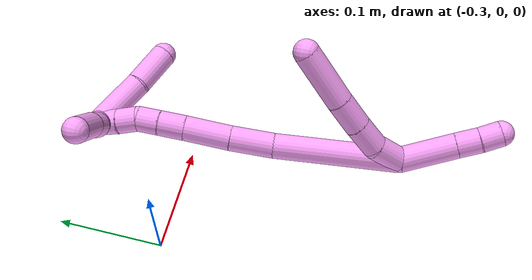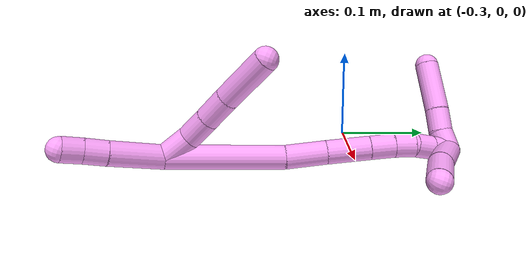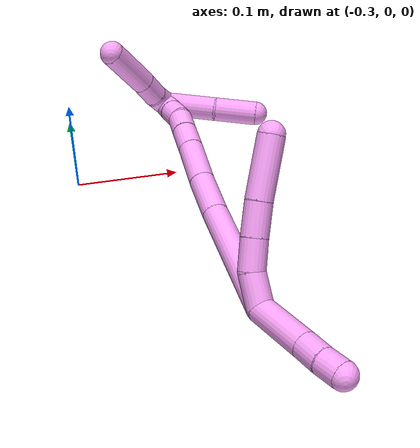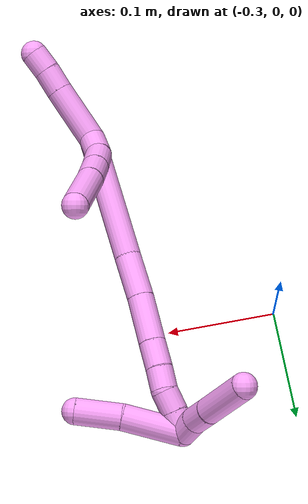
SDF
<sdf version="1.7">
 <world name="default">
  <model name="4">
   <static>0</static>
   <link name="4">
    <collision name="collision-cylinder-e_1_2_8">
     <pose>-0.013511 0.002218 -0.008337 -2.88152 -1.00252 2.67303</pose>
     <geometry><cylinder><radius>0.0125</radius><length>0.03206</length></cylinder></geometry>
     <surface>
      <friction><ode><mu>1.16</mu><mu2>1.16</mu2><slip1>0</slip1><slip2>0</slip2></ode></friction>
      <contact><ode><kp>1e+06</kp><kd>1</kd><max_vel>0</max_vel><min_depth>0.001</min_depth></ode></contact>
     </surface>
    </collision>
    <visual name="visual-cylinder-e_1_2_8">
     <pose>-0.013511 0.002218 -0.008337 -2.88152 -1.00252 2.67303</pose>
     <geometry><cylinder><radius>0.0125</radius><length>0.03206</length></cylinder></geometry>
     <material><ambient>1 0.65098 0.996078 1</ambient></material>
    </visual>
    <collision name="collision-cylinder-e_2_8_9">
     <pose>-0.03856 0.010908 -0.022961 -2.34176 -0.907159 1.71291</pose>
     <geometry><cylinder><radius>0.0125</radius><length>0.029295</length></cylinder></geometry>
     <surface>
      <friction><ode><mu>1.16</mu><mu2>1.16</mu2><slip1>0</slip1><slip2>0</slip2></ode></friction>
      <contact><ode><kp>1e+06</kp><kd>1</kd><max_vel>0</max_vel><min_depth>0.001</min_depth></ode></contact>
     </surface>
    </collision>
    <visual name="visual-cylinder-e_2_8_9">
     <pose>-0.03856 0.010908 -0.022961 -2.34176 -0.907159 1.71291</pose>
     <geometry><cylinder><radius>0.0125</radius><length>0.029295</length></cylinder></geometry>
     <material><ambient>1 0.65098 0.996078 1</ambient></material>
    </visual>
    <collision name="collision-cylinder-e_3_9_10">
     <pose>-0.062249 0.024892 -0.035705 -2.28076 -0.886843 1.60471</pose>
     <geometry><cylinder><radius>0.0125</radius><length>0.031354</length></cylinder></geometry>
     <surface>
      <friction><ode><mu>1.16</mu><mu2>1.16</mu2><slip1>0</slip1><slip2>0</slip2></ode></friction>
      <contact><ode><kp>1e+06</kp><kd>1</kd><max_vel>0</max_vel><min_depth>0.001</min_depth></ode></contact>
     </surface>
    </collision>
    <visual name="visual-cylinder-e_3_9_10">
     <pose>-0.062249 0.024892 -0.035705 -2.28076 -0.886843 1.60471</pose>
     <geometry><cylinder><radius>0.0125</radius><length>0.031354</length></cylinder></geometry>
     <material><ambient>1 0.65098 0.996078 1</ambient></material>
    </visual>
    <collision name="collision-cylinder-e_4_10_6">
     <pose>-0.095294 0.047697 -0.054415 -2.24629 -0.817431 1.46784</pose>
     <geometry><cylinder><radius>0.0125</radius><length>0.057291</length></cylinder></geometry>
     <surface>
      <friction><ode><mu>1.16</mu><mu2>1.16</mu2><slip1>0</slip1><slip2>0</slip2></ode></friction>
      <contact><ode><kp>1e+06</kp><kd>1</kd><max_vel>0</max_vel><min_depth>0.001</min_depth></ode></contact>
     </surface>
    </collision>
    <visual name="visual-cylinder-e_4_10_6">
     <pose>-0.095294 0.047697 -0.054415 -2.24629 -0.817431 1.46784</pose>
     <geometry><cylinder><radius>0.0125</radius><length>0.057291</length></cylinder></geometry>
     <material><ambient>1 0.65098 0.996078 1</ambient></material>
    </visual>
    <collision name="collision-cylinder-e_1_2_11">
     <pose>0.007845 0.013677 0.02331 -0.530614 0.282501 -0.077235</pose>
     <geometry><cylinder><radius>0.0125</radius><length>0.056284</length></cylinder></geometry>
     <surface>
      <friction><ode><mu>1.16</mu><mu2>1.16</mu2><slip1>0</slip1><slip2>0</slip2></ode></friction>
      <contact><ode><kp>1e+06</kp><kd>1</kd><max_vel>0</max_vel><min_depth>0.001</min_depth></ode></contact>
     </surface>
    </collision>
    <visual name="visual-cylinder-e_1_2_11">
     <pose>0.007845 0.013677 0.02331 -0.530614 0.282501 -0.077235</pose>
     <geometry><cylinder><radius>0.0125</radius><length>0.056284</length></cylinder></geometry>
     <material><ambient>1 0.65098 0.996078 1</ambient></material>
    </visual>
    <collision name="collision-cylinder-e_2_11_12">
     <pose>0.018561 0.03267 0.056342 -0.500361 0.253545 -0.065116</pose>
     <geometry><cylinder><radius>0.0125</radius><length>0.022891</length></cylinder></geometry>
     <surface>
      <friction><ode><mu>1.16</mu><mu2>1.16</mu2><slip1>0</slip1><slip2>0</slip2></ode></friction>
      <contact><ode><kp>1e+06</kp><kd>1</kd><max_vel>0</max_vel><min_depth>0.001</min_depth></ode></contact>
     </surface>
    </collision>
    <visual name="visual-cylinder-e_2_11_12">
     <pose>0.018561 0.03267 0.056342 -0.500361 0.253545 -0.065116</pose>
     <geometry><cylinder><radius>0.0125</radius><length>0.022891</length></cylinder></geometry>
     <material><ambient>1 0.65098 0.996078 1</ambient></material>
    </visual>
    <collision name="collision-cylinder-e_3_12_5">
     <pose>0.024307 0.043545 0.074384 -0.589029 0.279757 -0.085366</pose>
     <geometry><cylinder><radius>0.0125</radius><length>0.020825</length></cylinder></geometry>
     <surface>
      <friction><ode><mu>1.16</mu><mu2>1.16</mu2><slip1>0</slip1><slip2>0</slip2></ode></friction>
      <contact><ode><kp>1e+06</kp><kd>1</kd><max_vel>0</max_vel><min_depth>0.001</min_depth></ode></contact>
     </surface>
    </collision>
    <visual name="visual-cylinder-e_3_12_5">
     <pose>0.024307 0.043545 0.074384 -0.589029 0.279757 -0.085366</pose>
     <geometry><cylinder><radius>0.0125</radius><length>0.020825</length></cylinder></geometry>
     <material><ambient>1 0.65098 0.996078 1</ambient></material>
    </visual>
    <collision name="collision-cylinder-e_1_2_13">
     <pose>-0.021981 -0.009092 -0.056398 2.98176 -0.367325 -2.32748</pose>
     <geometry><cylinder><radius>0.0125</radius><length>0.122418</length></cylinder></geometry>
     <surface>
      <friction><ode><mu>1.16</mu><mu2>1.16</mu2><slip1>0</slip1><slip2>0</slip2></ode></friction>
      <contact><ode><kp>1e+06</kp><kd>1</kd><max_vel>0</max_vel><min_depth>0.001</min_depth></ode></contact>
     </surface>
    </collision>
    <visual name="visual-cylinder-e_1_2_13">
     <pose>-0.021981 -0.009092 -0.056398 2.98176 -0.367325 -2.32748</pose>
     <geometry><cylinder><radius>0.0125</radius><length>0.122418</length></cylinder></geometry>
     <material><ambient>1 0.65098 0.996078 1</ambient></material>
    </visual>
    <collision name="collision-cylinder-e_2_13_14">
     <pose>-0.05404 -0.020326 -0.1318 3.02932 -0.484944 -2.69478</pose>
     <geometry><cylinder><radius>0.0125</radius><length>0.043236</length></cylinder></geometry>
     <surface>
      <friction><ode><mu>1.16</mu><mu2>1.16</mu2><slip1>0</slip1><slip2>0</slip2></ode></friction>
      <contact><ode><kp>1e+06</kp><kd>1</kd><max_vel>0</max_vel><min_depth>0.001</min_depth></ode></contact>
     </surface>
    </collision>
    <visual name="visual-cylinder-e_2_13_14">
     <pose>-0.05404 -0.020326 -0.1318 3.02932 -0.484944 -2.69478</pose>
     <geometry><cylinder><radius>0.0125</radius><length>0.043236</length></cylinder></geometry>
     <material><ambient>1 0.65098 0.996078 1</ambient></material>
    </visual>
    <collision name="collision-cylinder-e_3_14_15">
     <pose>-0.074453 -0.0237 -0.171154 3.08114 -0.469234 -2.88994</pose>
     <geometry><cylinder><radius>0.0125</radius><length>0.045712</length></cylinder></geometry>
     <surface>
      <friction><ode><mu>1.16</mu><mu2>1.16</mu2><slip1>0</slip1><slip2>0</slip2></ode></friction>
      <contact><ode><kp>1e+06</kp><kd>1</kd><max_vel>0</max_vel><min_depth>0.001</min_depth></ode></contact>
     </surface>
    </collision>
    <visual name="visual-cylinder-e_3_14_15">
     <pose>-0.074453 -0.0237 -0.171154 3.08114 -0.469234 -2.88994</pose>
     <geometry><cylinder><radius>0.0125</radius><length>0.045712</length></cylinder></geometry>
     <material><ambient>1 0.65098 0.996078 1</ambient></material>
    </visual>
    <collision name="collision-cylinder-e_4_15_16">
     <pose>-0.090501 -0.025858 -0.202982 3.06107 -0.460397 -2.80114</pose>
     <geometry><cylinder><radius>0.0125</radius><length>0.025712</length></cylinder></geometry>
     <surface>
      <friction><ode><mu>1.16</mu><mu2>1.16</mu2><slip1>0</slip1><slip2>0</slip2></ode></friction>
      <contact><ode><kp>1e+06</kp><kd>1</kd><max_vel>0</max_vel><min_depth>0.001</min_depth></ode></contact>
     </surface>
    </collision>
    <visual name="visual-cylinder-e_4_15_16">
     <pose>-0.090501 -0.025858 -0.202982 3.06107 -0.460397 -2.80114</pose>
     <geometry><cylinder><radius>0.0125</radius><length>0.025712</length></cylinder></geometry>
     <material><ambient>1 0.65098 0.996078 1</ambient></material>
    </visual>
    <collision name="collision-cylinder-e_5_16_17">
     <pose>-0.100322 -0.027516 -0.224313 3.06749 -0.394217 -2.77453</pose>
     <geometry><cylinder><radius>0.0125</radius><length>0.021399</length></cylinder></geometry>
     <surface>
      <friction><ode><mu>1.16</mu><mu2>1.16</mu2><slip1>0</slip1><slip2>0</slip2></ode></friction>
      <contact><ode><kp>1e+06</kp><kd>1</kd><max_vel>0</max_vel><min_depth>0.001</min_depth></ode></contact>
     </surface>
    </collision>
    <visual name="visual-cylinder-e_5_16_17">
     <pose>-0.100322 -0.027516 -0.224313 3.06749 -0.394217 -2.77453</pose>
     <geometry><cylinder><radius>0.0125</radius><length>0.021399</length></cylinder></geometry>
     <material><ambient>1 0.65098 0.996078 1</ambient></material>
    </visual>
    <collision name="collision-cylinder-e_6_17_18">
     <pose>-0.106913 -0.031943 -0.24335 2.75906 -0.245611 -1.13498</pose>
     <geometry><cylinder><radius>0.0125</radius><length>0.020414</length></cylinder></geometry>
     <surface>
      <friction><ode><mu>1.16</mu><mu2>1.16</mu2><slip1>0</slip1><slip2>0</slip2></ode></friction>
      <contact><ode><kp>1e+06</kp><kd>1</kd><max_vel>0</max_vel><min_depth>0.001</min_depth></ode></contact>
     </surface>
    </collision>
    <visual name="visual-cylinder-e_6_17_18">
     <pose>-0.106913 -0.031943 -0.24335 2.75906 -0.245611 -1.13498</pose>
     <geometry><cylinder><radius>0.0125</radius><length>0.020414</length></cylinder></geometry>
     <material><ambient>1 0.65098 0.996078 1</ambient></material>
    </visual>
    <collision name="collision-cylinder-e_7_18_1">
     <pose>-0.111696 -0.038776 -0.262347 2.83214 -0.21978 -1.23135</pose>
     <geometry><cylinder><radius>0.0125</radius><length>0.02111</length></cylinder></geometry>
     <surface>
      <friction><ode><mu>1.16</mu><mu2>1.16</mu2><slip1>0</slip1><slip2>0</slip2></ode></friction>
      <contact><ode><kp>1e+06</kp><kd>1</kd><max_vel>0</max_vel><min_depth>0.001</min_depth></ode></contact>
     </surface>
    </collision>
    <visual name="visual-cylinder-e_7_18_1">
     <pose>-0.111696 -0.038776 -0.262347 2.83214 -0.21978 -1.23135</pose>
     <geometry><cylinder><radius>0.0125</radius><length>0.02111</length></cylinder></geometry>
     <material><ambient>1 0.65098 0.996078 1</ambient></material>
    </visual>
    <collision name="collision-cylinder-e_1_1_19">
     <pose>-0.122446 -0.043877 -0.265878 0.303173 -0.909026 -0.14901</pose>
     <geometry><cylinder><radius>0.0125</radius><length>0.021419</length></cylinder></geometry>
     <surface>
      <friction><ode><mu>1.16</mu><mu2>1.16</mu2><slip1>0</slip1><slip2>0</slip2></ode></friction>
      <contact><ode><kp>1e+06</kp><kd>1</kd><max_vel>0</max_vel><min_depth>0.001</min_depth></ode></contact>
     </surface>
    </collision>
    <visual name="visual-cylinder-e_1_1_19">
     <pose>-0.122446 -0.043877 -0.265878 0.303173 -0.909026 -0.14901</pose>
     <geometry><cylinder><radius>0.0125</radius><length>0.021419</length></cylinder></geometry>
     <material><ambient>1 0.65098 0.996078 1</ambient></material>
    </visual>
    <collision name="collision-cylinder-e_2_19_20">
     <pose>-0.141746 -0.047701 -0.254428 0.345283 -1.1022 -0.213535</pose>
     <geometry><cylinder><radius>0.0125</radius><length>0.024325</length></cylinder></geometry>
     <surface>
      <friction><ode><mu>1.16</mu><mu2>1.16</mu2><slip1>0</slip1><slip2>0</slip2></ode></friction>
      <contact><ode><kp>1e+06</kp><kd>1</kd><max_vel>0</max_vel><min_depth>0.001</min_depth></ode></contact>
     </surface>
    </collision>
    <visual name="visual-cylinder-e_2_19_20">
     <pose>-0.141746 -0.047701 -0.254428 0.345283 -1.1022 -0.213535</pose>
     <geometry><cylinder><radius>0.0125</radius><length>0.024325</length></cylinder></geometry>
     <material><ambient>1 0.65098 0.996078 1</ambient></material>
    </visual>
    <collision name="collision-cylinder-e_3_20_4">
     <pose>-0.176142 -0.055033 -0.236946 0.418194 -1.051 -0.244872</pose>
     <geometry><cylinder><radius>0.0125</radius><length>0.054257</length></cylinder></geometry>
     <surface>
      <friction><ode><mu>1.16</mu><mu2>1.16</mu2><slip1>0</slip1><slip2>0</slip2></ode></friction>
      <contact><ode><kp>1e+06</kp><kd>1</kd><max_vel>0</max_vel><min_depth>0.001</min_depth></ode></contact>
     </surface>
    </collision>
    <visual name="visual-cylinder-e_3_20_4">
     <pose>-0.176142 -0.055033 -0.236946 0.418194 -1.051 -0.244872</pose>
     <geometry><cylinder><radius>0.0125</radius><length>0.054257</length></cylinder></geometry>
     <material><ambient>1 0.65098 0.996078 1</ambient></material>
    </visual>
    <collision name="collision-cylinder-e_1_1_21">
     <pose>-0.102217 -0.017134 -0.264976 -1.28864 0.428355 -0.323965</pose>
     <geometry><cylinder><radius>0.0125</radius><length>0.056724</length></cylinder></geometry>
     <surface>
      <friction><ode><mu>1.16</mu><mu2>1.16</mu2><slip1>0</slip1><slip2>0</slip2></ode></friction>
      <contact><ode><kp>1e+06</kp><kd>1</kd><max_vel>0</max_vel><min_depth>0.001</min_depth></ode></contact>
     </surface>
    </collision>
    <visual name="visual-cylinder-e_1_1_21">
     <pose>-0.102217 -0.017134 -0.264976 -1.28864 0.428355 -0.323965</pose>
     <geometry><cylinder><radius>0.0125</radius><length>0.056724</length></cylinder></geometry>
     <material><ambient>1 0.65098 0.996078 1</ambient></material>
    </visual>
    <collision name="collision-cylinder-e_2_21_3">
     <pose>-0.080296 0.026594 -0.255267 -1.43829 0.487688 -0.428967</pose>
     <geometry><cylinder><radius>0.0125</radius><length>0.043276</length></cylinder></geometry>
     <surface>
      <friction><ode><mu>1.16</mu><mu2>1.16</mu2><slip1>0</slip1><slip2>0</slip2></ode></friction>
      <contact><ode><kp>1e+06</kp><kd>1</kd><max_vel>0</max_vel><min_depth>0.001</min_depth></ode></contact>
     </surface>
    </collision>
    <visual name="visual-cylinder-e_2_21_3">
     <pose>-0.080296 0.026594 -0.255267 -1.43829 0.487688 -0.428967</pose>
     <geometry><cylinder><radius>0.0125</radius><length>0.043276</length></cylinder></geometry>
     <material><ambient>1 0.65098 0.996078 1</ambient></material>
    </visual>
    <collision name="collision-sphere-3">
     <pose>-0.070157 0.045542 -0.252741 0 -0 0</pose>
     <geometry><sphere><radius>0.0125</radius></sphere></geometry>
     <surface>
      <friction><ode><mu>1.16</mu><mu2>1.16</mu2><slip1>0</slip1><slip2>0</slip2></ode></friction>
      <contact><ode><kp>1e+06</kp><kd>1</kd><max_vel>0</max_vel><min_depth>0.001</min_depth></ode></contact>
     </surface>
    </collision>
    <visual name="visual-sphere-3">
     <pose>-0.070157 0.045542 -0.252741 0 -0 0</pose>
     <geometry><sphere><radius>0.0125</radius></sphere></geometry>
     <material><ambient>1 0.65098 0.996078 1</ambient></material>
    </visual>
    <collision name="collision-sphere-21">
     <pose>-0.090436 0.007646 -0.257792 0 -0 0</pose>
     <geometry><sphere><radius>0.0125</radius></sphere></geometry>
     <surface>
      <friction><ode><mu>1.16</mu><mu2>1.16</mu2><slip1>0</slip1><slip2>0</slip2></ode></friction>
      <contact><ode><kp>1e+06</kp><kd>1</kd><max_vel>0</max_vel><min_depth>0.001</min_depth></ode></contact>
     </surface>
    </collision>
    <visual name="visual-sphere-21">
     <pose>-0.090436 0.007646 -0.257792 0 -0 0</pose>
     <geometry><sphere><radius>0.0125</radius></sphere></geometry>
     <material><ambient>1 0.65098 0.996078 1</ambient></material>
    </visual>
    <collision name="collision-sphere-4">
     <pose>-0.199688 -0.060505 -0.224632 0 -0 0</pose>
     <geometry><sphere><radius>0.0125</radius></sphere></geometry>
     <surface>
      <friction><ode><mu>1.16</mu><mu2>1.16</mu2><slip1>0</slip1><slip2>0</slip2></ode></friction>
      <contact><ode><kp>1e+06</kp><kd>1</kd><max_vel>0</max_vel><min_depth>0.001</min_depth></ode></contact>
     </surface>
    </collision>
    <visual name="visual-sphere-4">
     <pose>-0.199688 -0.060505 -0.224632 0 -0 0</pose>
     <geometry><sphere><radius>0.0125</radius></sphere></geometry>
     <material><ambient>1 0.65098 0.996078 1</ambient></material>
    </visual>
    <collision name="collision-sphere-20">
     <pose>-0.152597 -0.049561 -0.249259 0 -0 0</pose>
     <geometry><sphere><radius>0.0125</radius></sphere></geometry>
     <surface>
      <friction><ode><mu>1.16</mu><mu2>1.16</mu2><slip1>0</slip1><slip2>0</slip2></ode></friction>
      <contact><ode><kp>1e+06</kp><kd>1</kd><max_vel>0</max_vel><min_depth>0.001</min_depth></ode></contact>
     </surface>
    </collision>
    <visual name="visual-sphere-20">
     <pose>-0.152597 -0.049561 -0.249259 0 -0 0</pose>
     <geometry><sphere><radius>0.0125</radius></sphere></geometry>
     <material><ambient>1 0.65098 0.996078 1</ambient></material>
    </visual>
    <collision name="collision-sphere-11">
     <pose>0.01569 0.027354 0.04662 0 -0 0</pose>
     <geometry><sphere><radius>0.0125</radius></sphere></geometry>
     <surface>
      <friction><ode><mu>1.16</mu><mu2>1.16</mu2><slip1>0</slip1><slip2>0</slip2></ode></friction>
      <contact><ode><kp>1e+06</kp><kd>1</kd><max_vel>0</max_vel><min_depth>0.001</min_depth></ode></contact>
     </surface>
    </collision>
    <visual name="visual-sphere-11">
     <pose>0.01569 0.027354 0.04662 0 -0 0</pose>
     <geometry><sphere><radius>0.0125</radius></sphere></geometry>
     <material><ambient>1 0.65098 0.996078 1</ambient></material>
    </visual>
    <collision name="collision-sphere-6">
     <pose>-0.116188 0.06299 -0.066668 0 -0 0</pose>
     <geometry><sphere><radius>0.0125</radius></sphere></geometry>
     <surface>
      <friction><ode><mu>1.16</mu><mu2>1.16</mu2><slip1>0</slip1><slip2>0</slip2></ode></friction>
      <contact><ode><kp>1e+06</kp><kd>1</kd><max_vel>0</max_vel><min_depth>0.001</min_depth></ode></contact>
     </surface>
    </collision>
    <visual name="visual-sphere-6">
     <pose>-0.116188 0.06299 -0.066668 0 -0 0</pose>
     <geometry><sphere><radius>0.0125</radius></sphere></geometry>
     <material><ambient>1 0.65098 0.996078 1</ambient></material>
    </visual>
    <collision name="collision-sphere-10">
     <pose>-0.0744 0.032404 -0.042161 0 -0 0</pose>
     <geometry><sphere><radius>0.0125</radius></sphere></geometry>
     <surface>
      <friction><ode><mu>1.16</mu><mu2>1.16</mu2><slip1>0</slip1><slip2>0</slip2></ode></friction>
      <contact><ode><kp>1e+06</kp><kd>1</kd><max_vel>0</max_vel><min_depth>0.001</min_depth></ode></contact>
     </surface>
    </collision>
    <visual name="visual-sphere-10">
     <pose>-0.0744 0.032404 -0.042161 0 -0 0</pose>
     <geometry><sphere><radius>0.0125</radius></sphere></geometry>
     <material><ambient>1 0.65098 0.996078 1</ambient></material>
    </visual>
    <collision name="collision-sphere-9">
     <pose>-0.050098 0.017379 -0.029248 0 -0 0</pose>
     <geometry><sphere><radius>0.0125</radius></sphere></geometry>
     <surface>
      <friction><ode><mu>1.16</mu><mu2>1.16</mu2><slip1>0</slip1><slip2>0</slip2></ode></friction>
      <contact><ode><kp>1e+06</kp><kd>1</kd><max_vel>0</max_vel><min_depth>0.001</min_depth></ode></contact>
     </surface>
    </collision>
    <visual name="visual-sphere-9">
     <pose>-0.050098 0.017379 -0.029248 0 -0 0</pose>
     <geometry><sphere><radius>0.0125</radius></sphere></geometry>
     <material><ambient>1 0.65098 0.996078 1</ambient></material>
    </visual>
    <collision name="collision-sphere-2">
     <geometry><sphere><radius>0.0125</radius></sphere></geometry>
     <surface>
      <friction><ode><mu>1.16</mu><mu2>1.16</mu2><slip1>0</slip1><slip2>0</slip2></ode></friction>
      <contact><ode><kp>1e+06</kp><kd>1</kd><max_vel>0</max_vel><min_depth>0.001</min_depth></ode></contact>
     </surface>
    </collision>
    <visual name="visual-sphere-2">
     <geometry><sphere><radius>0.0125</radius></sphere></geometry>
     <material><ambient>1 0.65098 0.996078 1</ambient></material>
    </visual>
    <collision name="collision-sphere-19">
     <pose>-0.130895 -0.045842 -0.259597 0 -0 0</pose>
     <geometry><sphere><radius>0.0125</radius></sphere></geometry>
     <surface>
      <friction><ode><mu>1.16</mu><mu2>1.16</mu2><slip1>0</slip1><slip2>0</slip2></ode></friction>
      <contact><ode><kp>1e+06</kp><kd>1</kd><max_vel>0</max_vel><min_depth>0.001</min_depth></ode></contact>
     </surface>
    </collision>
    <visual name="visual-sphere-19">
     <pose>-0.130895 -0.045842 -0.259597 0 -0 0</pose>
     <geometry><sphere><radius>0.0125</radius></sphere></geometry>
     <material><ambient>1 0.65098 0.996078 1</ambient></material>
    </visual>
    <collision name="collision-sphere-8">
     <pose>-0.027021 0.004437 -0.016674 0 -0 0</pose>
     <geometry><sphere><radius>0.0125</radius></sphere></geometry>
     <surface>
      <friction><ode><mu>1.16</mu><mu2>1.16</mu2><slip1>0</slip1><slip2>0</slip2></ode></friction>
      <contact><ode><kp>1e+06</kp><kd>1</kd><max_vel>0</max_vel><min_depth>0.001</min_depth></ode></contact>
     </surface>
    </collision>
    <visual name="visual-sphere-8">
     <pose>-0.027021 0.004437 -0.016674 0 -0 0</pose>
     <geometry><sphere><radius>0.0125</radius></sphere></geometry>
     <material><ambient>1 0.65098 0.996078 1</ambient></material>
    </visual>
    <collision name="collision-sphere-12">
     <pose>0.021432 0.037985 0.066063 0 -0 0</pose>
     <geometry><sphere><radius>0.0125</radius></sphere></geometry>
     <surface>
      <friction><ode><mu>1.16</mu><mu2>1.16</mu2><slip1>0</slip1><slip2>0</slip2></ode></friction>
      <contact><ode><kp>1e+06</kp><kd>1</kd><max_vel>0</max_vel><min_depth>0.001</min_depth></ode></contact>
     </surface>
    </collision>
    <visual name="visual-sphere-12">
     <pose>0.021432 0.037985 0.066063 0 -0 0</pose>
     <geometry><sphere><radius>0.0125</radius></sphere></geometry>
     <material><ambient>1 0.65098 0.996078 1</ambient></material>
    </visual>
    <collision name="collision-sphere-5">
     <pose>0.027182 0.049104 0.082706 0 -0 0</pose>
     <geometry><sphere><radius>0.0125</radius></sphere></geometry>
     <surface>
      <friction><ode><mu>1.16</mu><mu2>1.16</mu2><slip1>0</slip1><slip2>0</slip2></ode></friction>
      <contact><ode><kp>1e+06</kp><kd>1</kd><max_vel>0</max_vel><min_depth>0.001</min_depth></ode></contact>
     </surface>
    </collision>
    <visual name="visual-sphere-5">
     <pose>0.027182 0.049104 0.082706 0 -0 0</pose>
     <geometry><sphere><radius>0.0125</radius></sphere></geometry>
     <material><ambient>1 0.65098 0.996078 1</ambient></material>
    </visual>
    <collision name="collision-sphere-13">
     <pose>-0.043963 -0.018183 -0.112795 0 -0 0</pose>
     <geometry><sphere><radius>0.0125</radius></sphere></geometry>
     <surface>
      <friction><ode><mu>1.16</mu><mu2>1.16</mu2><slip1>0</slip1><slip2>0</slip2></ode></friction>
      <contact><ode><kp>1e+06</kp><kd>1</kd><max_vel>0</max_vel><min_depth>0.001</min_depth></ode></contact>
     </surface>
    </collision>
    <visual name="visual-sphere-13">
     <pose>-0.043963 -0.018183 -0.112795 0 -0 0</pose>
     <geometry><sphere><radius>0.0125</radius></sphere></geometry>
     <material><ambient>1 0.65098 0.996078 1</ambient></material>
    </visual>
    <collision name="collision-sphere-14">
     <pose>-0.064117 -0.022469 -0.150805 0 -0 0</pose>
     <geometry><sphere><radius>0.0125</radius></sphere></geometry>
     <surface>
      <friction><ode><mu>1.16</mu><mu2>1.16</mu2><slip1>0</slip1><slip2>0</slip2></ode></friction>
      <contact><ode><kp>1e+06</kp><kd>1</kd><max_vel>0</max_vel><min_depth>0.001</min_depth></ode></contact>
     </surface>
    </collision>
    <visual name="visual-sphere-14">
     <pose>-0.064117 -0.022469 -0.150805 0 -0 0</pose>
     <geometry><sphere><radius>0.0125</radius></sphere></geometry>
     <material><ambient>1 0.65098 0.996078 1</ambient></material>
    </visual>
    <collision name="collision-sphere-15">
     <pose>-0.084789 -0.024932 -0.191502 0 -0 0</pose>
     <geometry><sphere><radius>0.0125</radius></sphere></geometry>
     <surface>
      <friction><ode><mu>1.16</mu><mu2>1.16</mu2><slip1>0</slip1><slip2>0</slip2></ode></friction>
      <contact><ode><kp>1e+06</kp><kd>1</kd><max_vel>0</max_vel><min_depth>0.001</min_depth></ode></contact>
     </surface>
    </collision>
    <visual name="visual-sphere-15">
     <pose>-0.084789 -0.024932 -0.191502 0 -0 0</pose>
     <geometry><sphere><radius>0.0125</radius></sphere></geometry>
     <material><ambient>1 0.65098 0.996078 1</ambient></material>
    </visual>
    <collision name="collision-sphere-16">
     <pose>-0.096212 -0.026785 -0.214462 0 -0 0</pose>
     <geometry><sphere><radius>0.0125</radius></sphere></geometry>
     <surface>
      <friction><ode><mu>1.16</mu><mu2>1.16</mu2><slip1>0</slip1><slip2>0</slip2></ode></friction>
      <contact><ode><kp>1e+06</kp><kd>1</kd><max_vel>0</max_vel><min_depth>0.001</min_depth></ode></contact>
     </surface>
    </collision>
    <visual name="visual-sphere-16">
     <pose>-0.096212 -0.026785 -0.214462 0 -0 0</pose>
     <geometry><sphere><radius>0.0125</radius></sphere></geometry>
     <material><ambient>1 0.65098 0.996078 1</ambient></material>
    </visual>
    <collision name="collision-sphere-17">
     <pose>-0.104431 -0.028247 -0.234165 0 -0 0</pose>
     <geometry><sphere><radius>0.0125</radius></sphere></geometry>
     <surface>
      <friction><ode><mu>1.16</mu><mu2>1.16</mu2><slip1>0</slip1><slip2>0</slip2></ode></friction>
      <contact><ode><kp>1e+06</kp><kd>1</kd><max_vel>0</max_vel><min_depth>0.001</min_depth></ode></contact>
     </surface>
    </collision>
    <visual name="visual-sphere-17">
     <pose>-0.104431 -0.028247 -0.234165 0 -0 0</pose>
     <geometry><sphere><radius>0.0125</radius></sphere></geometry>
     <material><ambient>1 0.65098 0.996078 1</ambient></material>
    </visual>
    <collision name="collision-sphere-18">
     <pose>-0.109395 -0.035639 -0.252535 0 -0 0</pose>
     <geometry><sphere><radius>0.0125</radius></sphere></geometry>
     <surface>
      <friction><ode><mu>1.16</mu><mu2>1.16</mu2><slip1>0</slip1><slip2>0</slip2></ode></friction>
      <contact><ode><kp>1e+06</kp><kd>1</kd><max_vel>0</max_vel><min_depth>0.001</min_depth></ode></contact>
     </surface>
    </collision>
    <visual name="visual-sphere-18">
     <pose>-0.109395 -0.035639 -0.252535 0 -0 0</pose>
     <geometry><sphere><radius>0.0125</radius></sphere></geometry>
     <material><ambient>1 0.65098 0.996078 1</ambient></material>
    </visual>
    <collision name="collision-sphere-1">
     <pose>-0.113997 -0.041913 -0.272159 0 -0 0</pose>
     <geometry><sphere><radius>0.0125</radius></sphere></geometry>
     <surface>
      <friction><ode><mu>1.16</mu><mu2>1.16</mu2><slip1>0</slip1><slip2>0</slip2></ode></friction>
      <contact><ode><kp>1e+06</kp><kd>1</kd><max_vel>0</max_vel><min_depth>0.001</min_depth></ode></contact>
     </surface>
    </collision>
    <visual name="visual-sphere-1">
     <pose>-0.113997 -0.041913 -0.272159 0 -0 0</pose>
     <geometry><sphere><radius>0.0125</radius></sphere></geometry>
     <material><ambient>1 0.65098 0.996078 1</ambient></material>
    </visual>
    <inertial>
     <pose>-0.066596 -0.005838 -0.123726 0 -0 0</pose>
     <mass>0.75</mass>
     <inertia>
      <ixx>-0.000199</ixx>
      <ixy>0</ixy>
      <ixz>0</ixz>
      <iyy>9.7e-05</iyy>
      <iyz>0</iyz>
      <izz>5.8e-05</izz>
     </inertia>
    </inertial>
   </link>
   <pose>-0.163283 -0.198379 0.017289 0.876976 1.04489 -0.808038</pose>
  </model>
 </world>
</sdf>
